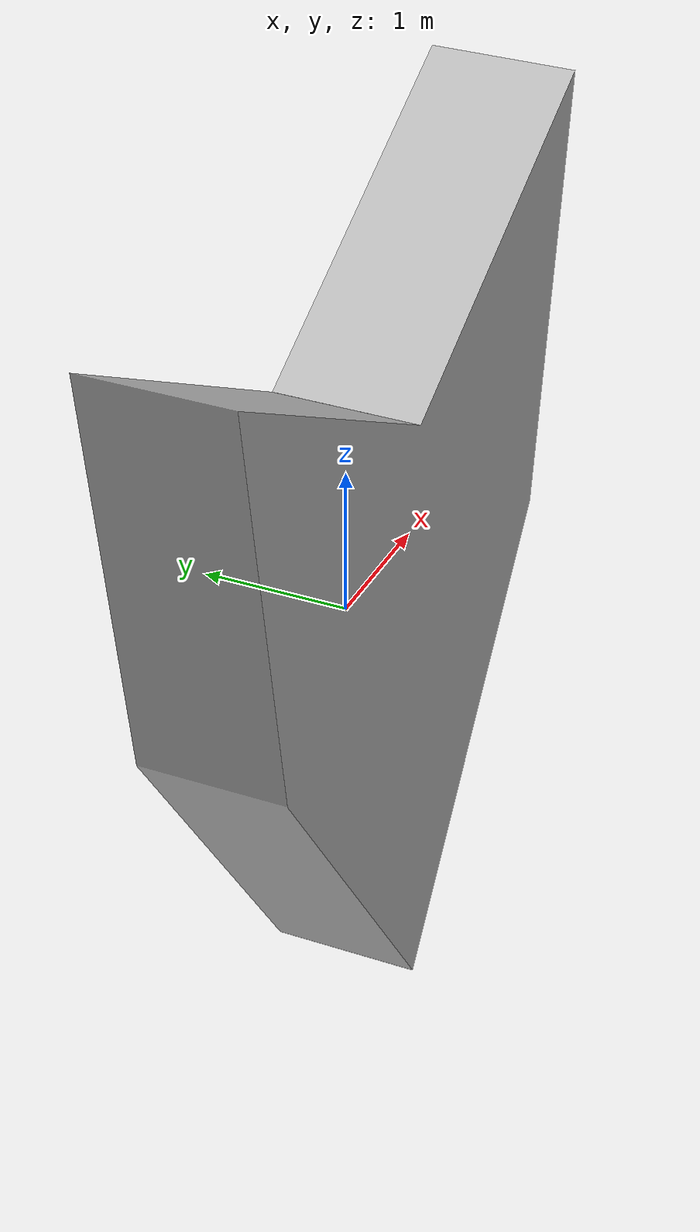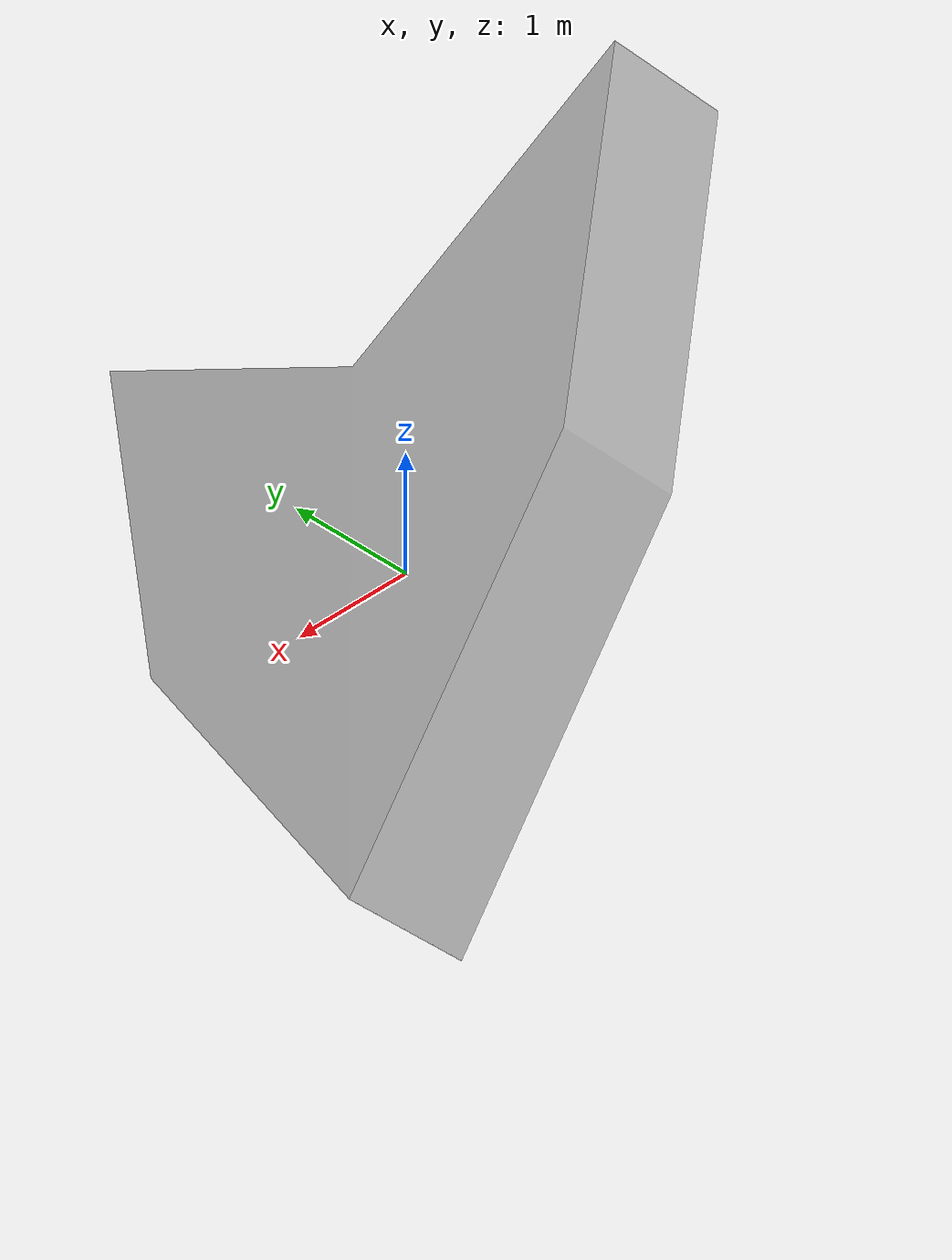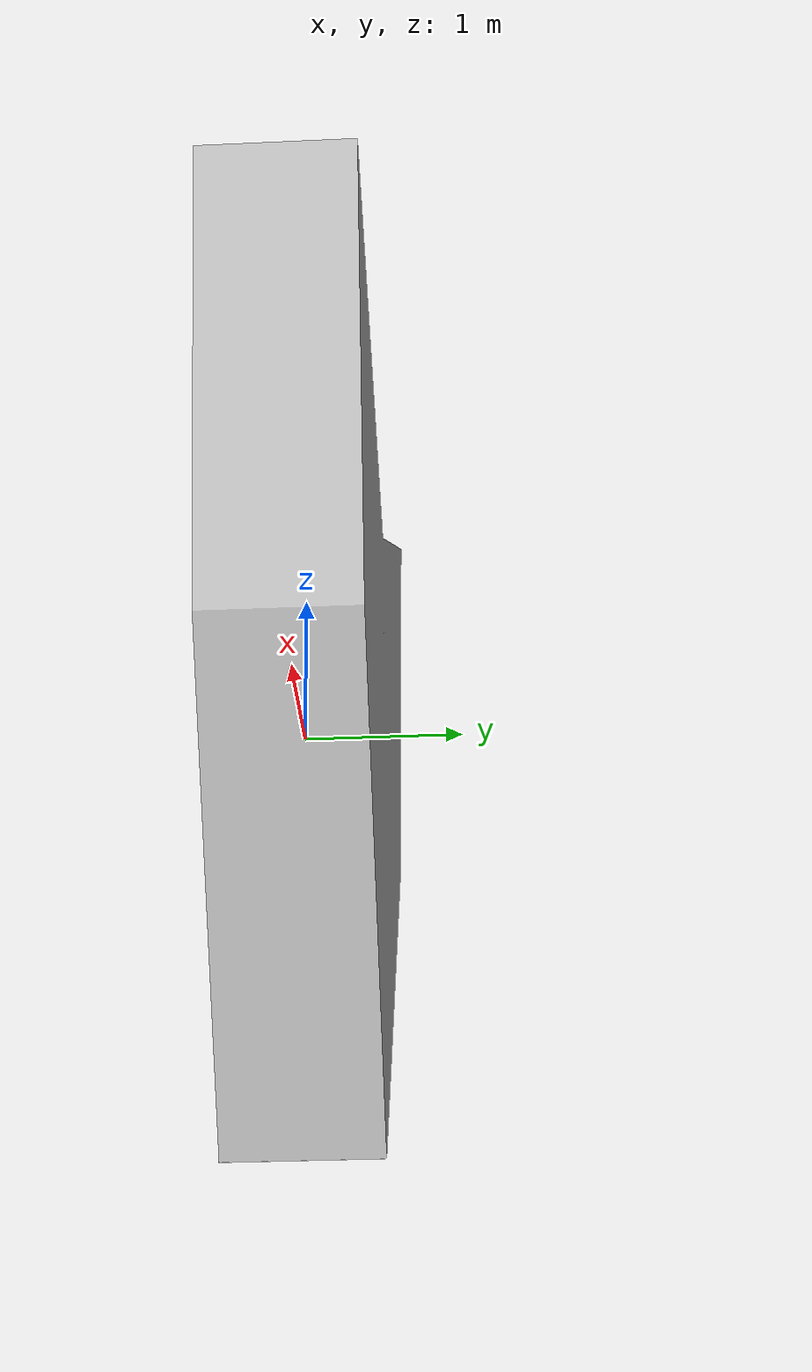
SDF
<?xml version='1.0'?>
<sdf version='1.4'>
  <model name='manas'>
    <static>true</static>
    <link name="manas">
      <visual name="visual">
            <geometry>
                <mesh>
                    <uri>model://manas/materials/meshes/manas.dae</uri>
		    	<scale>0.5 0.5 0.5</scale>
                </mesh>
            </geometry>
        </visual>
        <collision name="collision">
            <geometry>
                <mesh>
                    <uri>model://manas/materials/meshes/manas.dae</uri>
		    	<scale>0.5 0.5 0.5</scale>
                </mesh>
            </geometry>
        </collision>
    </link>
  </model>
</sdf>
